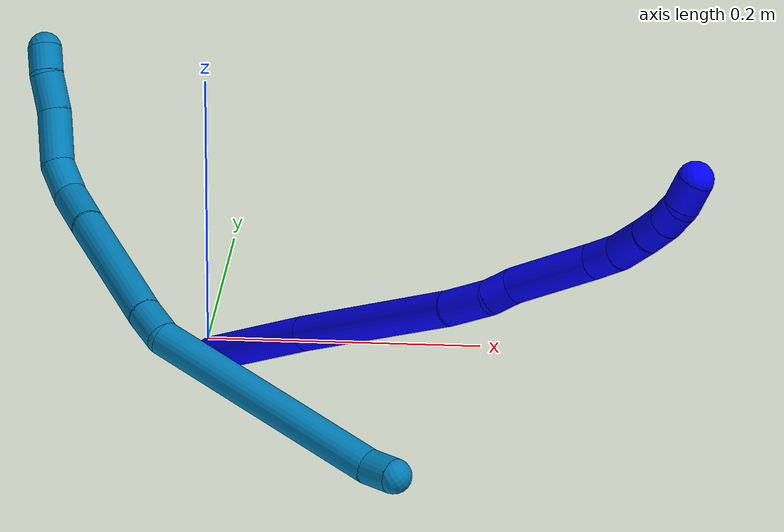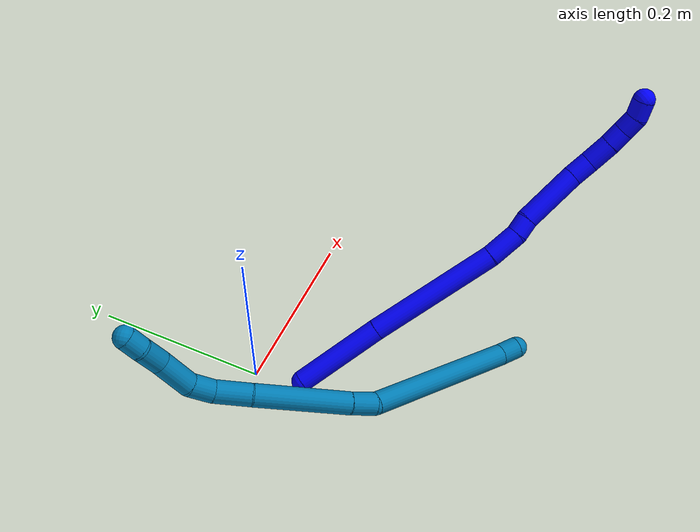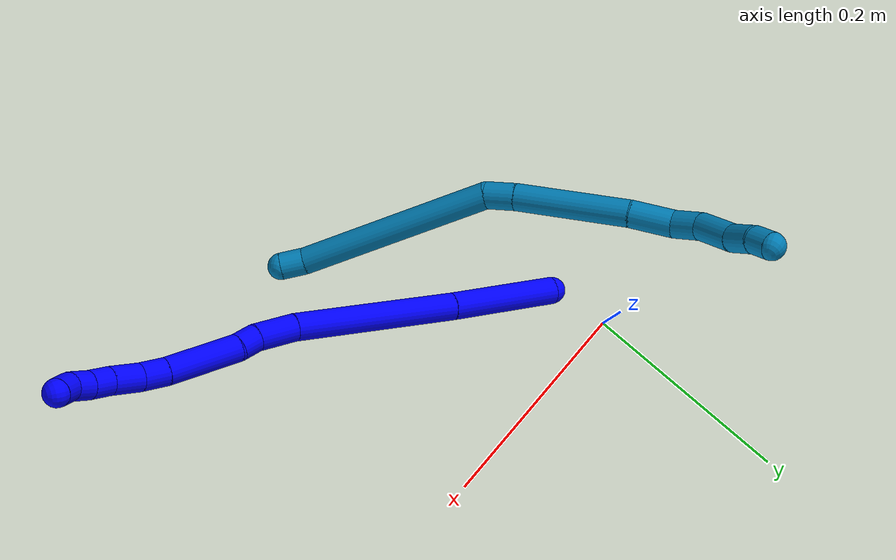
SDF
<sdf version="1.7">
 <world name="default">
  <model name="1">
   <static>0</static>
   <link name="1">
    <collision name="collision-cylinder-e_1_1_4">
     <pose>0.00173 -0.002735 0.051504 0.053059 0.033531 0.00089</pose>
     <geometry><cylinder><radius>0.0125</radius><length>0.103212</length></cylinder></geometry>
     <surface>
      <friction><ode><mu>1.16</mu><mu2>1.16</mu2><slip1>0</slip1><slip2>0</slip2></ode></friction>
      <contact><ode><kp>1e+06</kp><kd>1</kd><max_vel>0</max_vel><min_depth>0.001</min_depth></ode></contact>
     </surface>
    </collision>
    <visual name="visual-cylinder-e_1_1_4">
     <pose>0.00173 -0.002735 0.051504 0.053059 0.033531 0.00089</pose>
     <geometry><cylinder><radius>0.0125</radius><length>0.103212</length></cylinder></geometry>
     <material><ambient>0 0 1 1</ambient></material>
    </visual>
    <collision name="collision-cylinder-e_2_4_5">
     <pose>0.008549 -0.010688 0.179289 0.068293 0.066458 0.002271</pose>
     <geometry><cylinder><radius>0.0125</radius><length>0.153255</length></cylinder></geometry>
     <surface>
      <friction><ode><mu>1.16</mu><mu2>1.16</mu2><slip1>0</slip1><slip2>0</slip2></ode></friction>
      <contact><ode><kp>1e+06</kp><kd>1</kd><max_vel>0</max_vel><min_depth>0.001</min_depth></ode></contact>
     </surface>
    </collision>
    <visual name="visual-cylinder-e_2_4_5">
     <pose>0.008549 -0.010688 0.179289 0.068293 0.066458 0.002271</pose>
     <geometry><cylinder><radius>0.0125</radius><length>0.153255</length></cylinder></geometry>
     <material><ambient>0 0 1 1</ambient></material>
    </visual>
    <collision name="collision-cylinder-e_3_5_6">
     <pose>0.013115 -0.015431 0.274519 -0.025061 -0.02754 0.000345</pose>
     <geometry><cylinder><radius>0.0125</radius><length>0.037926</length></cylinder></geometry>
     <surface>
      <friction><ode><mu>1.16</mu><mu2>1.16</mu2><slip1>0</slip1><slip2>0</slip2></ode></friction>
      <contact><ode><kp>1e+06</kp><kd>1</kd><max_vel>0</max_vel><min_depth>0.001</min_depth></ode></contact>
     </surface>
    </collision>
    <visual name="visual-cylinder-e_3_5_6">
     <pose>0.013115 -0.015431 0.274519 -0.025061 -0.02754 0.000345</pose>
     <geometry><cylinder><radius>0.0125</radius><length>0.037926</length></cylinder></geometry>
     <material><ambient>0 0 1 1</ambient></material>
    </visual>
    <collision name="collision-cylinder-e_4_6_7">
     <pose>0.010023 -0.013274 0.303294 -0.169539 -0.252311 0.021553</pose>
     <geometry><cylinder><radius>0.0125</radius><length>0.020588</length></cylinder></geometry>
     <surface>
      <friction><ode><mu>1.16</mu><mu2>1.16</mu2><slip1>0</slip1><slip2>0</slip2></ode></friction>
      <contact><ode><kp>1e+06</kp><kd>1</kd><max_vel>0</max_vel><min_depth>0.001</min_depth></ode></contact>
     </surface>
    </collision>
    <visual name="visual-cylinder-e_4_6_7">
     <pose>0.010023 -0.013274 0.303294 -0.169539 -0.252311 0.021553</pose>
     <geometry><cylinder><radius>0.0125</radius><length>0.020588</length></cylinder></geometry>
     <material><ambient>0 0 1 1</ambient></material>
    </visual>
    <collision name="collision-cylinder-e_5_7_8">
     <pose>0.004982 -0.009287 0.347612 -0.066718 -0.071368 0.002383</pose>
     <geometry><cylinder><radius>0.0125</radius><length>0.069317</length></cylinder></geometry>
     <surface>
      <friction><ode><mu>1.16</mu><mu2>1.16</mu2><slip1>0</slip1><slip2>0</slip2></ode></friction>
      <contact><ode><kp>1e+06</kp><kd>1</kd><max_vel>0</max_vel><min_depth>0.001</min_depth></ode></contact>
     </surface>
    </collision>
    <visual name="visual-cylinder-e_5_7_8">
     <pose>0.004982 -0.009287 0.347612 -0.066718 -0.071368 0.002383</pose>
     <geometry><cylinder><radius>0.0125</radius><length>0.069317</length></cylinder></geometry>
     <material><ambient>0 0 1 1</ambient></material>
    </visual>
    <collision name="collision-cylinder-e_6_8_9">
     <pose>0.001775 -0.007446 0.394254 0.038176 -0.06044 -0.001154</pose>
     <geometry><cylinder><radius>0.0125</radius><length>0.024358</length></cylinder></geometry>
     <surface>
      <friction><ode><mu>1.16</mu><mu2>1.16</mu2><slip1>0</slip1><slip2>0</slip2></ode></friction>
      <contact><ode><kp>1e+06</kp><kd>1</kd><max_vel>0</max_vel><min_depth>0.001</min_depth></ode></contact>
     </surface>
    </collision>
    <visual name="visual-cylinder-e_6_8_9">
     <pose>0.001775 -0.007446 0.394254 0.038176 -0.06044 -0.001154</pose>
     <geometry><cylinder><radius>0.0125</radius><length>0.024358</length></cylinder></geometry>
     <material><ambient>0 0 1 1</ambient></material>
    </visual>
    <collision name="collision-cylinder-e_7_9_10">
     <pose>-0.001524 -0.010424 0.420783 0.173049 -0.173799 -0.015113</pose>
     <geometry><cylinder><radius>0.0125</radius><length>0.029646</length></cylinder></geometry>
     <surface>
      <friction><ode><mu>1.16</mu><mu2>1.16</mu2><slip1>0</slip1><slip2>0</slip2></ode></friction>
      <contact><ode><kp>1e+06</kp><kd>1</kd><max_vel>0</max_vel><min_depth>0.001</min_depth></ode></contact>
     </surface>
    </collision>
    <visual name="visual-cylinder-e_7_9_10">
     <pose>-0.001524 -0.010424 0.420783 0.173049 -0.173799 -0.015113</pose>
     <geometry><cylinder><radius>0.0125</radius><length>0.029646</length></cylinder></geometry>
     <material><ambient>0 0 1 1</ambient></material>
    </visual>
    <collision name="collision-cylinder-e_8_10_11">
     <pose>-0.006675 -0.014233 0.44502 0.130639 -0.254739 -0.016753</pose>
     <geometry><cylinder><radius>0.0125</radius><length>0.020544</length></cylinder></geometry>
     <surface>
      <friction><ode><mu>1.16</mu><mu2>1.16</mu2><slip1>0</slip1><slip2>0</slip2></ode></friction>
      <contact><ode><kp>1e+06</kp><kd>1</kd><max_vel>0</max_vel><min_depth>0.001</min_depth></ode></contact>
     </surface>
    </collision>
    <visual name="visual-cylinder-e_8_10_11">
     <pose>-0.006675 -0.014233 0.44502 0.130639 -0.254739 -0.016753</pose>
     <geometry><cylinder><radius>0.0125</radius><length>0.020544</length></cylinder></geometry>
     <material><ambient>0 0 1 1</ambient></material>
    </visual>
    <collision name="collision-cylinder-e_9_11_12">
     <pose>-0.012581 -0.018117 0.464093 0.273859 -0.333478 -0.046373</pose>
     <geometry><cylinder><radius>0.0125</radius><length>0.020265</length></cylinder></geometry>
     <surface>
      <friction><ode><mu>1.16</mu><mu2>1.16</mu2><slip1>0</slip1><slip2>0</slip2></ode></friction>
      <contact><ode><kp>1e+06</kp><kd>1</kd><max_vel>0</max_vel><min_depth>0.001</min_depth></ode></contact>
     </surface>
    </collision>
    <visual name="visual-cylinder-e_9_11_12">
     <pose>-0.012581 -0.018117 0.464093 0.273859 -0.333478 -0.046373</pose>
     <geometry><cylinder><radius>0.0125</radius><length>0.020265</length></cylinder></geometry>
     <material><ambient>0 0 1 1</ambient></material>
    </visual>
    <collision name="collision-cylinder-e_10_12_2">
     <pose>-0.022874 -0.022048 0.480967 0.173458 -0.731496 -0.066573</pose>
     <geometry><cylinder><radius>0.0125</radius><length>0.02089</length></cylinder></geometry>
     <surface>
      <friction><ode><mu>1.16</mu><mu2>1.16</mu2><slip1>0</slip1><slip2>0</slip2></ode></friction>
      <contact><ode><kp>1e+06</kp><kd>1</kd><max_vel>0</max_vel><min_depth>0.001</min_depth></ode></contact>
     </surface>
    </collision>
    <visual name="visual-cylinder-e_10_12_2">
     <pose>-0.022874 -0.022048 0.480967 0.173458 -0.731496 -0.066573</pose>
     <geometry><cylinder><radius>0.0125</radius><length>0.02089</length></cylinder></geometry>
     <material><ambient>0 0 1 1</ambient></material>
    </visual>
    <collision name="collision-sphere-2">
     <pose>-0.029851 -0.023389 0.488623 0 -0 0</pose>
     <geometry><sphere><radius>0.0125</radius></sphere></geometry>
     <surface>
      <friction><ode><mu>1.16</mu><mu2>1.16</mu2><slip1>0</slip1><slip2>0</slip2></ode></friction>
      <contact><ode><kp>1e+06</kp><kd>1</kd><max_vel>0</max_vel><min_depth>0.001</min_depth></ode></contact>
     </surface>
    </collision>
    <visual name="visual-sphere-2">
     <pose>-0.029851 -0.023389 0.488623 0 -0 0</pose>
     <geometry><sphere><radius>0.0125</radius></sphere></geometry>
     <material><ambient>0 0 1 1</ambient></material>
    </visual>
    <collision name="collision-sphere-12">
     <pose>-0.015897 -0.020706 0.473311 0 -0 0</pose>
     <geometry><sphere><radius>0.0125</radius></sphere></geometry>
     <surface>
      <friction><ode><mu>1.16</mu><mu2>1.16</mu2><slip1>0</slip1><slip2>0</slip2></ode></friction>
      <contact><ode><kp>1e+06</kp><kd>1</kd><max_vel>0</max_vel><min_depth>0.001</min_depth></ode></contact>
     </surface>
    </collision>
    <visual name="visual-sphere-12">
     <pose>-0.015897 -0.020706 0.473311 0 -0 0</pose>
     <geometry><sphere><radius>0.0125</radius></sphere></geometry>
     <material><ambient>0 0 1 1</ambient></material>
    </visual>
    <collision name="collision-sphere-11">
     <pose>-0.009264 -0.015528 0.454876 0 -0 0</pose>
     <geometry><sphere><radius>0.0125</radius></sphere></geometry>
     <surface>
      <friction><ode><mu>1.16</mu><mu2>1.16</mu2><slip1>0</slip1><slip2>0</slip2></ode></friction>
      <contact><ode><kp>1e+06</kp><kd>1</kd><max_vel>0</max_vel><min_depth>0.001</min_depth></ode></contact>
     </surface>
    </collision>
    <visual name="visual-sphere-11">
     <pose>-0.009264 -0.015528 0.454876 0 -0 0</pose>
     <geometry><sphere><radius>0.0125</radius></sphere></geometry>
     <material><ambient>0 0 1 1</ambient></material>
    </visual>
    <collision name="collision-sphere-10">
     <pose>-0.004087 -0.012938 0.435165 0 -0 0</pose>
     <geometry><sphere><radius>0.0125</radius></sphere></geometry>
     <surface>
      <friction><ode><mu>1.16</mu><mu2>1.16</mu2><slip1>0</slip1><slip2>0</slip2></ode></friction>
      <contact><ode><kp>1e+06</kp><kd>1</kd><max_vel>0</max_vel><min_depth>0.001</min_depth></ode></contact>
     </surface>
    </collision>
    <visual name="visual-sphere-10">
     <pose>-0.004087 -0.012938 0.435165 0 -0 0</pose>
     <geometry><sphere><radius>0.0125</radius></sphere></geometry>
     <material><ambient>0 0 1 1</ambient></material>
    </visual>
    <collision name="collision-sphere-9">
     <pose>0.001039 -0.00791 0.406402 0 -0 0</pose>
     <geometry><sphere><radius>0.0125</radius></sphere></geometry>
     <surface>
      <friction><ode><mu>1.16</mu><mu2>1.16</mu2><slip1>0</slip1><slip2>0</slip2></ode></friction>
      <contact><ode><kp>1e+06</kp><kd>1</kd><max_vel>0</max_vel><min_depth>0.001</min_depth></ode></contact>
     </surface>
    </collision>
    <visual name="visual-sphere-9">
     <pose>0.001039 -0.00791 0.406402 0 -0 0</pose>
     <geometry><sphere><radius>0.0125</radius></sphere></geometry>
     <material><ambient>0 0 1 1</ambient></material>
    </visual>
    <collision name="collision-sphere-4">
     <pose>0.00346 -0.005471 0.103008 0 -0 0</pose>
     <geometry><sphere><radius>0.0125</radius></sphere></geometry>
     <surface>
      <friction><ode><mu>1.16</mu><mu2>1.16</mu2><slip1>0</slip1><slip2>0</slip2></ode></friction>
      <contact><ode><kp>1e+06</kp><kd>1</kd><max_vel>0</max_vel><min_depth>0.001</min_depth></ode></contact>
     </surface>
    </collision>
    <visual name="visual-sphere-4">
     <pose>0.00346 -0.005471 0.103008 0 -0 0</pose>
     <geometry><sphere><radius>0.0125</radius></sphere></geometry>
     <material><ambient>0 0 1 1</ambient></material>
    </visual>
    <collision name="collision-sphere-1">
     <geometry><sphere><radius>0.0125</radius></sphere></geometry>
     <surface>
      <friction><ode><mu>1.16</mu><mu2>1.16</mu2><slip1>0</slip1><slip2>0</slip2></ode></friction>
      <contact><ode><kp>1e+06</kp><kd>1</kd><max_vel>0</max_vel><min_depth>0.001</min_depth></ode></contact>
     </surface>
    </collision>
    <visual name="visual-sphere-1">
     <geometry><sphere><radius>0.0125</radius></sphere></geometry>
     <material><ambient>0 0 1 1</ambient></material>
    </visual>
    <collision name="collision-sphere-8">
     <pose>0.002511 -0.006982 0.382106 0 -0 0</pose>
     <geometry><sphere><radius>0.0125</radius></sphere></geometry>
     <surface>
      <friction><ode><mu>1.16</mu><mu2>1.16</mu2><slip1>0</slip1><slip2>0</slip2></ode></friction>
      <contact><ode><kp>1e+06</kp><kd>1</kd><max_vel>0</max_vel><min_depth>0.001</min_depth></ode></contact>
     </surface>
    </collision>
    <visual name="visual-sphere-8">
     <pose>0.002511 -0.006982 0.382106 0 -0 0</pose>
     <geometry><sphere><radius>0.0125</radius></sphere></geometry>
     <material><ambient>0 0 1 1</ambient></material>
    </visual>
    <collision name="collision-sphere-5">
     <pose>0.013638 -0.015906 0.255569 0 -0 0</pose>
     <geometry><sphere><radius>0.0125</radius></sphere></geometry>
     <surface>
      <friction><ode><mu>1.16</mu><mu2>1.16</mu2><slip1>0</slip1><slip2>0</slip2></ode></friction>
      <contact><ode><kp>1e+06</kp><kd>1</kd><max_vel>0</max_vel><min_depth>0.001</min_depth></ode></contact>
     </surface>
    </collision>
    <visual name="visual-sphere-5">
     <pose>0.013638 -0.015906 0.255569 0 -0 0</pose>
     <geometry><sphere><radius>0.0125</radius></sphere></geometry>
     <material><ambient>0 0 1 1</ambient></material>
    </visual>
    <collision name="collision-sphere-6">
     <pose>0.012593 -0.014956 0.293469 0 -0 0</pose>
     <geometry><sphere><radius>0.0125</radius></sphere></geometry>
     <surface>
      <friction><ode><mu>1.16</mu><mu2>1.16</mu2><slip1>0</slip1><slip2>0</slip2></ode></friction>
      <contact><ode><kp>1e+06</kp><kd>1</kd><max_vel>0</max_vel><min_depth>0.001</min_depth></ode></contact>
     </surface>
    </collision>
    <visual name="visual-sphere-6">
     <pose>0.012593 -0.014956 0.293469 0 -0 0</pose>
     <geometry><sphere><radius>0.0125</radius></sphere></geometry>
     <material><ambient>0 0 1 1</ambient></material>
    </visual>
    <collision name="collision-sphere-7">
     <pose>0.007454 -0.011592 0.313119 0 -0 0</pose>
     <geometry><sphere><radius>0.0125</radius></sphere></geometry>
     <surface>
      <friction><ode><mu>1.16</mu><mu2>1.16</mu2><slip1>0</slip1><slip2>0</slip2></ode></friction>
      <contact><ode><kp>1e+06</kp><kd>1</kd><max_vel>0</max_vel><min_depth>0.001</min_depth></ode></contact>
     </surface>
    </collision>
    <visual name="visual-sphere-7">
     <pose>0.007454 -0.011592 0.313119 0 -0 0</pose>
     <geometry><sphere><radius>0.0125</radius></sphere></geometry>
     <material><ambient>0 0 1 1</ambient></material>
    </visual>
    <inertial>
     <pose>0.003332 -0.010066 0.248432 0 -0 0</pose>
     <mass>0.5</mass>
     <inertia>
      <ixx>0.000447</ixx>
      <ixy>0</ixy>
      <ixz>0</ixz>
      <iyy>0.000447</iyy>
      <iyz>0</iyz>
      <izz>4.5e-05</izz>
     </inertia>
    </inertial>
   </link>
   <pose>0.008562 -0.056091 0.011502 -0.739301 0.960977 -1.45186</pose>
  </model>
  <model name="9">
   <static>0</static>
   <link name="9">
    <collision name="collision-cylinder-e_1_1_4">
     <pose>-0.006506 0.006824 0.006487 -0.810734 -0.604672 0.26611</pose>
     <geometry><cylinder><radius>0.0125</radius><length>0.022889</length></cylinder></geometry>
     <surface>
      <friction><ode><mu>1.16</mu><mu2>1.16</mu2><slip1>0</slip1><slip2>0</slip2></ode></friction>
      <contact><ode><kp>1e+06</kp><kd>1</kd><max_vel>0</max_vel><min_depth>0.001</min_depth></ode></contact>
     </surface>
    </collision>
    <visual name="visual-cylinder-e_1_1_4">
     <pose>-0.006506 0.006824 0.006487 -0.810734 -0.604672 0.26611</pose>
     <geometry><cylinder><radius>0.0125</radius><length>0.022889</length></cylinder></geometry>
     <material><ambient>0 0.490196 0.709804 1</ambient></material>
    </visual>
    <collision name="collision-cylinder-e_2_4_5">
     <pose>-0.048317 0.087009 0.055696 -1.04345 -0.39411 0.228535</pose>
     <geometry><cylinder><radius>0.0125</radius><length>0.183885</length></cylinder></geometry>
     <surface>
      <friction><ode><mu>1.16</mu><mu2>1.16</mu2><slip1>0</slip1><slip2>0</slip2></ode></friction>
      <contact><ode><kp>1e+06</kp><kd>1</kd><max_vel>0</max_vel><min_depth>0.001</min_depth></ode></contact>
     </surface>
    </collision>
    <visual name="visual-cylinder-e_2_4_5">
     <pose>-0.048317 0.087009 0.055696 -1.04345 -0.39411 0.228535</pose>
     <geometry><cylinder><radius>0.0125</radius><length>0.183885</length></cylinder></geometry>
     <material><ambient>0 0.490196 0.709804 1</ambient></material>
    </visual>
    <collision name="collision-cylinder-e_3_5_6">
     <pose>-0.092801 0.170721 0.100913 -1.33431 -0.711487 0.569395</pose>
     <geometry><cylinder><radius>0.0125</radius><length>0.028117</length></cylinder></geometry>
     <surface>
      <friction><ode><mu>1.16</mu><mu2>1.16</mu2><slip1>0</slip1><slip2>0</slip2></ode></friction>
      <contact><ode><kp>1e+06</kp><kd>1</kd><max_vel>0</max_vel><min_depth>0.001</min_depth></ode></contact>
     </surface>
    </collision>
    <visual name="visual-cylinder-e_3_5_6">
     <pose>-0.092801 0.170721 0.100913 -1.33431 -0.711487 0.569395</pose>
     <geometry><cylinder><radius>0.0125</radius><length>0.028117</length></cylinder></geometry>
     <material><ambient>0 0.490196 0.709804 1</ambient></material>
    </visual>
    <collision name="collision-cylinder-e_4_6_7">
     <pose>-0.139036 0.218727 0.109719 -1.40471 -0.770453 0.661158</pose>
     <geometry><cylinder><radius>0.0125</radius><length>0.10641</length></cylinder></geometry>
     <surface>
      <friction><ode><mu>1.16</mu><mu2>1.16</mu2><slip1>0</slip1><slip2>0</slip2></ode></friction>
      <contact><ode><kp>1e+06</kp><kd>1</kd><max_vel>0</max_vel><min_depth>0.001</min_depth></ode></contact>
     </surface>
    </collision>
    <visual name="visual-cylinder-e_4_6_7">
     <pose>-0.139036 0.218727 0.109719 -1.40471 -0.770453 0.661158</pose>
     <geometry><cylinder><radius>0.0125</radius><length>0.10641</length></cylinder></geometry>
     <material><ambient>0 0.490196 0.709804 1</ambient></material>
    </visual>
    <collision name="collision-cylinder-e_5_7_8">
     <pose>-0.191838 0.268931 0.118284 -1.39319 -0.890155 0.759294</pose>
     <geometry><cylinder><radius>0.0125</radius><length>0.040523</length></cylinder></geometry>
     <surface>
      <friction><ode><mu>1.16</mu><mu2>1.16</mu2><slip1>0</slip1><slip2>0</slip2></ode></friction>
      <contact><ode><kp>1e+06</kp><kd>1</kd><max_vel>0</max_vel><min_depth>0.001</min_depth></ode></contact>
     </surface>
    </collision>
    <visual name="visual-cylinder-e_5_7_8">
     <pose>-0.191838 0.268931 0.118284 -1.39319 -0.890155 0.759294</pose>
     <geometry><cylinder><radius>0.0125</radius><length>0.040523</length></cylinder></geometry>
     <material><ambient>0 0.490196 0.709804 1</ambient></material>
    </visual>
    <collision name="collision-cylinder-e_6_8_9">
     <pose>-0.214186 0.293648 0.119672 -1.64175 -0.496073 0.530942</pose>
     <geometry><cylinder><radius>0.0125</radius><length>0.02774</length></cylinder></geometry>
     <surface>
      <friction><ode><mu>1.16</mu><mu2>1.16</mu2><slip1>0</slip1><slip2>0</slip2></ode></friction>
      <contact><ode><kp>1e+06</kp><kd>1</kd><max_vel>0</max_vel><min_depth>0.001</min_depth></ode></contact>
     </surface>
    </collision>
    <visual name="visual-cylinder-e_6_8_9">
     <pose>-0.214186 0.293648 0.119672 -1.64175 -0.496073 0.530942</pose>
     <geometry><cylinder><radius>0.0125</radius><length>0.02774</length></cylinder></geometry>
     <material><ambient>0 0.490196 0.709804 1</ambient></material>
    </visual>
    <collision name="collision-cylinder-e_7_9_10">
     <pose>-0.228413 0.323188 0.110794 -2.00296 -0.379276 0.582752</pose>
     <geometry><cylinder><radius>0.0125</radius><length>0.04119</length></cylinder></geometry>
     <surface>
      <friction><ode><mu>1.16</mu><mu2>1.16</mu2><slip1>0</slip1><slip2>0</slip2></ode></friction>
      <contact><ode><kp>1e+06</kp><kd>1</kd><max_vel>0</max_vel><min_depth>0.001</min_depth></ode></contact>
     </surface>
    </collision>
    <visual name="visual-cylinder-e_7_9_10">
     <pose>-0.228413 0.323188 0.110794 -2.00296 -0.379276 0.582752</pose>
     <geometry><cylinder><radius>0.0125</radius><length>0.04119</length></cylinder></geometry>
     <material><ambient>0 0.490196 0.709804 1</ambient></material>
    </visual>
    <collision name="collision-cylinder-e_8_10_11">
     <pose>-0.238764 0.353817 0.098545 -1.8801 -0.193427 0.264157</pose>
     <geometry><cylinder><radius>0.0125</radius><length>0.028363</length></cylinder></geometry>
     <surface>
      <friction><ode><mu>1.16</mu><mu2>1.16</mu2><slip1>0</slip1><slip2>0</slip2></ode></friction>
      <contact><ode><kp>1e+06</kp><kd>1</kd><max_vel>0</max_vel><min_depth>0.001</min_depth></ode></contact>
     </surface>
    </collision>
    <visual name="visual-cylinder-e_8_10_11">
     <pose>-0.238764 0.353817 0.098545 -1.8801 -0.193427 0.264157</pose>
     <geometry><cylinder><radius>0.0125</radius><length>0.028363</length></cylinder></geometry>
     <material><ambient>0 0.490196 0.709804 1</ambient></material>
    </visual>
    <collision name="collision-cylinder-e_9_11_2">
     <pose>-0.245734 0.375794 0.09044 -1.98828 -0.418572 0.63129</pose>
     <geometry><cylinder><radius>0.0125</radius><length>0.020884</length></cylinder></geometry>
     <surface>
      <friction><ode><mu>1.16</mu><mu2>1.16</mu2><slip1>0</slip1><slip2>0</slip2></ode></friction>
      <contact><ode><kp>1e+06</kp><kd>1</kd><max_vel>0</max_vel><min_depth>0.001</min_depth></ode></contact>
     </surface>
    </collision>
    <visual name="visual-cylinder-e_9_11_2">
     <pose>-0.245734 0.375794 0.09044 -1.98828 -0.418572 0.63129</pose>
     <geometry><cylinder><radius>0.0125</radius><length>0.020884</length></cylinder></geometry>
     <material><ambient>0 0.490196 0.709804 1</ambient></material>
    </visual>
    <collision name="collision-sphere-2">
     <pose>-0.249979 0.384515 0.086572 0 -0 0</pose>
     <geometry><sphere><radius>0.0125</radius></sphere></geometry>
     <surface>
      <friction><ode><mu>1.16</mu><mu2>1.16</mu2><slip1>0</slip1><slip2>0</slip2></ode></friction>
      <contact><ode><kp>1e+06</kp><kd>1</kd><max_vel>0</max_vel><min_depth>0.001</min_depth></ode></contact>
     </surface>
    </collision>
    <visual name="visual-sphere-2">
     <pose>-0.249979 0.384515 0.086572 0 -0 0</pose>
     <geometry><sphere><radius>0.0125</radius></sphere></geometry>
     <material><ambient>0 0.490196 0.709804 1</ambient></material>
    </visual>
    <collision name="collision-sphere-11">
     <pose>-0.24149 0.367073 0.094309 0 -0 0</pose>
     <geometry><sphere><radius>0.0125</radius></sphere></geometry>
     <surface>
      <friction><ode><mu>1.16</mu><mu2>1.16</mu2><slip1>0</slip1><slip2>0</slip2></ode></friction>
      <contact><ode><kp>1e+06</kp><kd>1</kd><max_vel>0</max_vel><min_depth>0.001</min_depth></ode></contact>
     </surface>
    </collision>
    <visual name="visual-sphere-11">
     <pose>-0.24149 0.367073 0.094309 0 -0 0</pose>
     <geometry><sphere><radius>0.0125</radius></sphere></geometry>
     <material><ambient>0 0.490196 0.709804 1</ambient></material>
    </visual>
    <collision name="collision-sphere-10">
     <pose>-0.236038 0.34056 0.102781 0 -0 0</pose>
     <geometry><sphere><radius>0.0125</radius></sphere></geometry>
     <surface>
      <friction><ode><mu>1.16</mu><mu2>1.16</mu2><slip1>0</slip1><slip2>0</slip2></ode></friction>
      <contact><ode><kp>1e+06</kp><kd>1</kd><max_vel>0</max_vel><min_depth>0.001</min_depth></ode></contact>
     </surface>
    </collision>
    <visual name="visual-sphere-10">
     <pose>-0.236038 0.34056 0.102781 0 -0 0</pose>
     <geometry><sphere><radius>0.0125</radius></sphere></geometry>
     <material><ambient>0 0.490196 0.709804 1</ambient></material>
    </visual>
    <collision name="collision-sphere-9">
     <pose>-0.220788 0.305815 0.118807 0 -0 0</pose>
     <geometry><sphere><radius>0.0125</radius></sphere></geometry>
     <surface>
      <friction><ode><mu>1.16</mu><mu2>1.16</mu2><slip1>0</slip1><slip2>0</slip2></ode></friction>
      <contact><ode><kp>1e+06</kp><kd>1</kd><max_vel>0</max_vel><min_depth>0.001</min_depth></ode></contact>
     </surface>
    </collision>
    <visual name="visual-sphere-9">
     <pose>-0.220788 0.305815 0.118807 0 -0 0</pose>
     <geometry><sphere><radius>0.0125</radius></sphere></geometry>
     <material><ambient>0 0.490196 0.709804 1</ambient></material>
    </visual>
    <collision name="collision-sphere-4">
     <pose>-0.013012 0.013648 0.012973 0 -0 0</pose>
     <geometry><sphere><radius>0.0125</radius></sphere></geometry>
     <surface>
      <friction><ode><mu>1.16</mu><mu2>1.16</mu2><slip1>0</slip1><slip2>0</slip2></ode></friction>
      <contact><ode><kp>1e+06</kp><kd>1</kd><max_vel>0</max_vel><min_depth>0.001</min_depth></ode></contact>
     </surface>
    </collision>
    <visual name="visual-sphere-4">
     <pose>-0.013012 0.013648 0.012973 0 -0 0</pose>
     <geometry><sphere><radius>0.0125</radius></sphere></geometry>
     <material><ambient>0 0.490196 0.709804 1</ambient></material>
    </visual>
    <collision name="collision-sphere-1">
     <geometry><sphere><radius>0.0125</radius></sphere></geometry>
     <surface>
      <friction><ode><mu>1.16</mu><mu2>1.16</mu2><slip1>0</slip1><slip2>0</slip2></ode></friction>
      <contact><ode><kp>1e+06</kp><kd>1</kd><max_vel>0</max_vel><min_depth>0.001</min_depth></ode></contact>
     </surface>
    </collision>
    <visual name="visual-sphere-1">
     <geometry><sphere><radius>0.0125</radius></sphere></geometry>
     <material><ambient>0 0.490196 0.709804 1</ambient></material>
    </visual>
    <collision name="collision-sphere-8">
     <pose>-0.207585 0.281481 0.120536 0 -0 0</pose>
     <geometry><sphere><radius>0.0125</radius></sphere></geometry>
     <surface>
      <friction><ode><mu>1.16</mu><mu2>1.16</mu2><slip1>0</slip1><slip2>0</slip2></ode></friction>
      <contact><ode><kp>1e+06</kp><kd>1</kd><max_vel>0</max_vel><min_depth>0.001</min_depth></ode></contact>
     </surface>
    </collision>
    <visual name="visual-sphere-8">
     <pose>-0.207585 0.281481 0.120536 0 -0 0</pose>
     <geometry><sphere><radius>0.0125</radius></sphere></geometry>
     <material><ambient>0 0.490196 0.709804 1</ambient></material>
    </visual>
    <collision name="collision-sphere-5">
     <pose>-0.083621 0.16037 0.098418 0 -0 0</pose>
     <geometry><sphere><radius>0.0125</radius></sphere></geometry>
     <surface>
      <friction><ode><mu>1.16</mu><mu2>1.16</mu2><slip1>0</slip1><slip2>0</slip2></ode></friction>
      <contact><ode><kp>1e+06</kp><kd>1</kd><max_vel>0</max_vel><min_depth>0.001</min_depth></ode></contact>
     </surface>
    </collision>
    <visual name="visual-sphere-5">
     <pose>-0.083621 0.16037 0.098418 0 -0 0</pose>
     <geometry><sphere><radius>0.0125</radius></sphere></geometry>
     <material><ambient>0 0.490196 0.709804 1</ambient></material>
    </visual>
    <collision name="collision-sphere-6">
     <pose>-0.101981 0.181073 0.103407 0 -0 0</pose>
     <geometry><sphere><radius>0.0125</radius></sphere></geometry>
     <surface>
      <friction><ode><mu>1.16</mu><mu2>1.16</mu2><slip1>0</slip1><slip2>0</slip2></ode></friction>
      <contact><ode><kp>1e+06</kp><kd>1</kd><max_vel>0</max_vel><min_depth>0.001</min_depth></ode></contact>
     </surface>
    </collision>
    <visual name="visual-sphere-6">
     <pose>-0.101981 0.181073 0.103407 0 -0 0</pose>
     <geometry><sphere><radius>0.0125</radius></sphere></geometry>
     <material><ambient>0 0.490196 0.709804 1</ambient></material>
    </visual>
    <collision name="collision-sphere-7">
     <pose>-0.176091 0.256381 0.116031 0 -0 0</pose>
     <geometry><sphere><radius>0.0125</radius></sphere></geometry>
     <surface>
      <friction><ode><mu>1.16</mu><mu2>1.16</mu2><slip1>0</slip1><slip2>0</slip2></ode></friction>
      <contact><ode><kp>1e+06</kp><kd>1</kd><max_vel>0</max_vel><min_depth>0.001</min_depth></ode></contact>
     </surface>
    </collision>
    <visual name="visual-sphere-7">
     <pose>-0.176091 0.256381 0.116031 0 -0 0</pose>
     <geometry><sphere><radius>0.0125</radius></sphere></geometry>
     <material><ambient>0 0.490196 0.709804 1</ambient></material>
    </visual>
    <inertial>
     <pose>-0.122931 0.188939 0.084526 0 -0 0</pose>
     <mass>0.5</mass>
     <inertia>
      <ixx>0.000698</ixx>
      <ixy>0</ixy>
      <ixz>0</ixz>
      <iyy>0.000558</iyy>
      <iyz>0</iyz>
      <izz>-0.000219</izz>
     </inertia>
    </inertial>
   </link>
   <pose>0.154043 -0.26206 0.012431 2.13815 -0.311268 -1.57379</pose>
  </model>
 </world>
</sdf>
